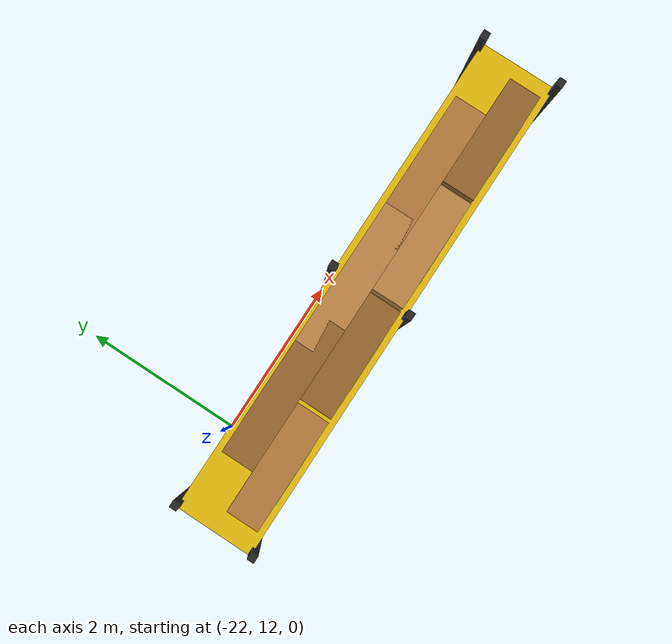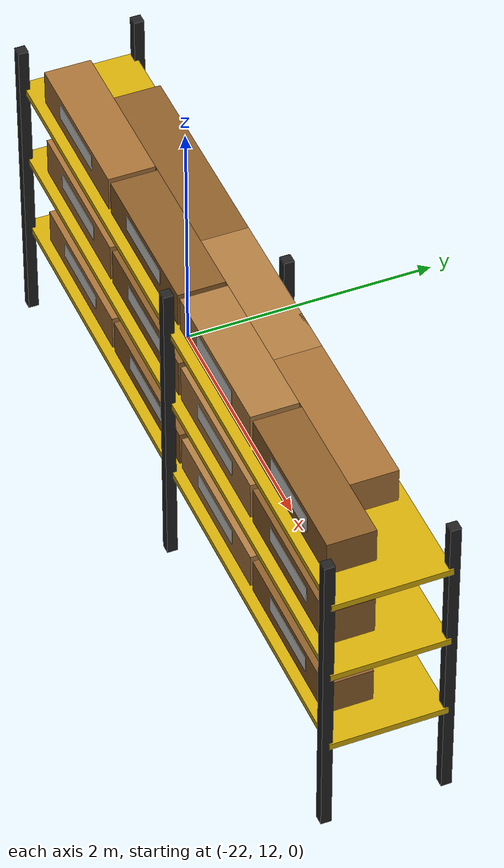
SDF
<sdf version="1.6">
 <world name="aws_industrial_warehouse">
  <model name="shelf_N1">
   <static>true</static>
   <pose>-20 11.5 0 0 0 0</pose>
   <link name="pFL">
    <pose>-2.8 -0.45 1.25 0 0 0</pose>
    <collision name="c">
     <geometry><box><size>0.08 0.08 2.5</size></box></geometry>
     <surface><friction><ode><mu>1.0</mu><mu2>1.0</mu2></ode></friction></surface>
    </collision>
    <visual name="v">
     <geometry><box><size>0.08 0.08 2.5</size></box></geometry>
     <material><ambient>0.10 0.10 0.10 1</ambient><diffuse>0.13 0.13 0.13 1</diffuse></material>
    </visual>
   </link>
   <link name="pBL">
    <pose>-2.8 0.45 1.25 0 0 0</pose>
    <collision name="c">
     <geometry><box><size>0.08 0.08 2.5</size></box></geometry>
     <surface><friction><ode><mu>1.0</mu><mu2>1.0</mu2></ode></friction></surface>
    </collision>
    <visual name="v">
     <geometry><box><size>0.08 0.08 2.5</size></box></geometry>
     <material><ambient>0.10 0.10 0.10 1</ambient><diffuse>0.13 0.13 0.13 1</diffuse></material>
    </visual>
   </link>
   <link name="pFC">
    <pose>0.0 -0.45 1.25 0 0 0</pose>
    <collision name="c">
     <geometry><box><size>0.08 0.08 2.5</size></box></geometry>
     <surface><friction><ode><mu>1.0</mu><mu2>1.0</mu2></ode></friction></surface>
    </collision>
    <visual name="v">
     <geometry><box><size>0.08 0.08 2.5</size></box></geometry>
     <material><ambient>0.10 0.10 0.10 1</ambient><diffuse>0.13 0.13 0.13 1</diffuse></material>
    </visual>
   </link>
   <link name="pBC">
    <pose>0.0 0.45 1.25 0 0 0</pose>
    <collision name="c">
     <geometry><box><size>0.08 0.08 2.5</size></box></geometry>
     <surface><friction><ode><mu>1.0</mu><mu2>1.0</mu2></ode></friction></surface>
    </collision>
    <visual name="v">
     <geometry><box><size>0.08 0.08 2.5</size></box></geometry>
     <material><ambient>0.10 0.10 0.10 1</ambient><diffuse>0.13 0.13 0.13 1</diffuse></material>
    </visual>
   </link>
   <link name="pFR">
    <pose>2.8 -0.45 1.25 0 0 0</pose>
    <collision name="c">
     <geometry><box><size>0.08 0.08 2.5</size></box></geometry>
     <surface><friction><ode><mu>1.0</mu><mu2>1.0</mu2></ode></friction></surface>
    </collision>
    <visual name="v">
     <geometry><box><size>0.08 0.08 2.5</size></box></geometry>
     <material><ambient>0.10 0.10 0.10 1</ambient><diffuse>0.13 0.13 0.13 1</diffuse></material>
    </visual>
   </link>
   <link name="pBR">
    <pose>2.8 0.45 1.25 0 0 0</pose>
    <collision name="c">
     <geometry><box><size>0.08 0.08 2.5</size></box></geometry>
     <surface><friction><ode><mu>1.0</mu><mu2>1.0</mu2></ode></friction></surface>
    </collision>
    <visual name="v">
     <geometry><box><size>0.08 0.08 2.5</size></box></geometry>
     <material><ambient>0.10 0.10 0.10 1</ambient><diffuse>0.13 0.13 0.13 1</diffuse></material>
    </visual>
   </link>
   <link name="deck1">
    <pose>0 0 0.77 0 0 0</pose>
    <collision name="c">
     <geometry><box><size>5.7 0.88 0.05</size></box></geometry>
     <surface><friction><ode><mu>1.0</mu><mu2>1.0</mu2></ode></friction></surface>
    </collision>
    <visual name="v">
     <geometry><box><size>5.7 0.88 0.05</size></box></geometry>
     <material><ambient>0.70 0.55 0.02 1</ambient><diffuse>0.82 0.67 0.03 1</diffuse></material>
    </visual>
   </link>
   <link name="deck2">
    <pose>0 0 1.45 0 0 0</pose>
    <collision name="c">
     <geometry><box><size>5.7 0.88 0.05</size></box></geometry>
     <surface><friction><ode><mu>1.0</mu><mu2>1.0</mu2></ode></friction></surface>
    </collision>
    <visual name="v">
     <geometry><box><size>5.7 0.88 0.05</size></box></geometry>
     <material><ambient>0.70 0.55 0.02 1</ambient><diffuse>0.82 0.67 0.03 1</diffuse></material>
    </visual>
   </link>
   <link name="deck3">
    <pose>0 0 2.12 0 0 0</pose>
    <collision name="c">
     <geometry><box><size>5.7 0.88 0.05</size></box></geometry>
     <surface><friction><ode><mu>1.0</mu><mu2>1.0</mu2></ode></friction></surface>
    </collision>
    <visual name="v">
     <geometry><box><size>5.7 0.88 0.05</size></box></geometry>
     <material><ambient>0.70 0.55 0.02 1</ambient><diffuse>0.82 0.67 0.03 1</diffuse></material>
    </visual>
   </link>
   <link name="bF1_1">
    <pose>-1.95 -0.18 0.94 0 0 0</pose>
    <visual name="v">
     <geometry><box><size>1.26 0.36 0.28</size></box></geometry>
     <material><ambient>0.58 0.38 0.18 1</ambient><diffuse>0.65 0.44 0.21 1</diffuse></material>
    </visual>
   </link>
   <link name="lF1_1">
    <pose>-1.95 -0.363 0.97 0 0 0</pose>
    <visual name="v">
     <geometry><box><size>0.62 0.005 0.13</size></box></geometry>
     <material><ambient>0.76 0.76 0.74 1</ambient><diffuse>0.83 0.83 0.81 1</diffuse></material>
    </visual>
   </link>
   <link name="bF1_2">
    <pose>-0.65 -0.18 0.94 0 0 0</pose>
    <visual name="v">
     <geometry><box><size>1.26 0.36 0.28</size></box></geometry>
     <material><ambient>0.48 0.30 0.12 1</ambient><diffuse>0.54 0.36 0.16 1</diffuse></material>
    </visual>
   </link>
   <link name="lF1_2">
    <pose>-0.65 -0.363 0.97 0 0 0</pose>
    <visual name="v">
     <geometry><box><size>0.62 0.005 0.13</size></box></geometry>
     <material><ambient>0.76 0.76 0.74 1</ambient><diffuse>0.83 0.83 0.81 1</diffuse></material>
    </visual>
   </link>
   <link name="bF1_3">
    <pose>0.65 -0.18 0.94 0 0 0</pose>
    <visual name="v">
     <geometry><box><size>1.26 0.36 0.28</size></box></geometry>
     <material><ambient>0.62 0.43 0.22 1</ambient><diffuse>0.68 0.48 0.25 1</diffuse></material>
    </visual>
   </link>
   <link name="lF1_3">
    <pose>0.65 -0.363 0.97 0 0 0</pose>
    <visual name="v">
     <geometry><box><size>0.62 0.005 0.13</size></box></geometry>
     <material><ambient>0.76 0.76 0.74 1</ambient><diffuse>0.83 0.83 0.81 1</diffuse></material>
    </visual>
   </link>
   <link name="bF1_4">
    <pose>1.95 -0.18 0.94 0 0 0</pose>
    <visual name="v">
     <geometry><box><size>1.26 0.36 0.28</size></box></geometry>
     <material><ambient>0.48 0.30 0.12 1</ambient><diffuse>0.54 0.36 0.16 1</diffuse></material>
    </visual>
   </link>
   <link name="lF1_4">
    <pose>1.95 -0.363 0.97 0 0 0</pose>
    <visual name="v">
     <geometry><box><size>0.62 0.005 0.13</size></box></geometry>
     <material><ambient>0.76 0.76 0.74 1</ambient><diffuse>0.83 0.83 0.81 1</diffuse></material>
    </visual>
   </link>
   <link name="bB1_1">
    <pose>-1.3 0.18 0.94 0 0 0</pose>
    <visual name="v">
     <geometry><box><size>1.65 0.36 0.3</size></box></geometry>
     <material><ambient>0.48 0.30 0.12 1</ambient><diffuse>0.54 0.36 0.16 1</diffuse></material>
    </visual>
   </link>
   <link name="bB1_2">
    <pose>0.0 0.18 0.94 0 0 0</pose>
    <visual name="v">
     <geometry><box><size>1.65 0.36 0.3</size></box></geometry>
     <material><ambient>0.62 0.43 0.22 1</ambient><diffuse>0.68 0.48 0.25 1</diffuse></material>
    </visual>
   </link>
   <link name="bB1_3">
    <pose>1.3 0.18 0.94 0 0 0</pose>
    <visual name="v">
     <geometry><box><size>1.65 0.36 0.3</size></box></geometry>
     <material><ambient>0.58 0.38 0.18 1</ambient><diffuse>0.65 0.44 0.21 1</diffuse></material>
    </visual>
   </link>
   <link name="bF2_1">
    <pose>-1.95 -0.18 1.62 0 0 0</pose>
    <visual name="v">
     <geometry><box><size>1.26 0.36 0.32</size></box></geometry>
     <material><ambient>0.58 0.38 0.18 1</ambient><diffuse>0.65 0.44 0.21 1</diffuse></material>
    </visual>
   </link>
   <link name="lF2_1">
    <pose>-1.95 -0.363 1.6500000000000001 0 0 0</pose>
    <visual name="v">
     <geometry><box><size>0.62 0.005 0.13</size></box></geometry>
     <material><ambient>0.76 0.76 0.74 1</ambient><diffuse>0.83 0.83 0.81 1</diffuse></material>
    </visual>
   </link>
   <link name="bF2_2">
    <pose>-0.65 -0.18 1.62 0 0 0</pose>
    <visual name="v">
     <geometry><box><size>1.26 0.36 0.32</size></box></geometry>
     <material><ambient>0.48 0.30 0.12 1</ambient><diffuse>0.54 0.36 0.16 1</diffuse></material>
    </visual>
   </link>
   <link name="lF2_2">
    <pose>-0.65 -0.363 1.6500000000000001 0 0 0</pose>
    <visual name="v">
     <geometry><box><size>0.62 0.005 0.13</size></box></geometry>
     <material><ambient>0.76 0.76 0.74 1</ambient><diffuse>0.83 0.83 0.81 1</diffuse></material>
    </visual>
   </link>
   <link name="bF2_3">
    <pose>0.65 -0.18 1.62 0 0 0</pose>
    <visual name="v">
     <geometry><box><size>1.26 0.36 0.32</size></box></geometry>
     <material><ambient>0.62 0.43 0.22 1</ambient><diffuse>0.68 0.48 0.25 1</diffuse></material>
    </visual>
   </link>
   <link name="lF2_3">
    <pose>0.65 -0.363 1.6500000000000001 0 0 0</pose>
    <visual name="v">
     <geometry><box><size>0.62 0.005 0.13</size></box></geometry>
     <material><ambient>0.76 0.76 0.74 1</ambient><diffuse>0.83 0.83 0.81 1</diffuse></material>
    </visual>
   </link>
   <link name="bF2_4">
    <pose>1.95 -0.18 1.62 0 0 0</pose>
    <visual name="v">
     <geometry><box><size>1.26 0.36 0.32</size></box></geometry>
     <material><ambient>0.48 0.30 0.12 1</ambient><diffuse>0.54 0.36 0.16 1</diffuse></material>
    </visual>
   </link>
   <link name="lF2_4">
    <pose>1.95 -0.363 1.6500000000000001 0 0 0</pose>
    <visual name="v">
     <geometry><box><size>0.62 0.005 0.13</size></box></geometry>
     <material><ambient>0.76 0.76 0.74 1</ambient><diffuse>0.83 0.83 0.81 1</diffuse></material>
    </visual>
   </link>
   <link name="bB2_1">
    <pose>-1.3 0.18 1.62 0 0 0</pose>
    <visual name="v">
     <geometry><box><size>1.65 0.36 0.28</size></box></geometry>
     <material><ambient>0.48 0.30 0.12 1</ambient><diffuse>0.54 0.36 0.16 1</diffuse></material>
    </visual>
   </link>
   <link name="bB2_2">
    <pose>0.0 0.18 1.62 0 0 0</pose>
    <visual name="v">
     <geometry><box><size>1.65 0.36 0.28</size></box></geometry>
     <material><ambient>0.62 0.43 0.22 1</ambient><diffuse>0.68 0.48 0.25 1</diffuse></material>
    </visual>
   </link>
   <link name="bB2_3">
    <pose>1.3 0.18 1.62 0 0 0</pose>
    <visual name="v">
     <geometry><box><size>1.65 0.36 0.28</size></box></geometry>
     <material><ambient>0.58 0.38 0.18 1</ambient><diffuse>0.65 0.44 0.21 1</diffuse></material>
    </visual>
   </link>
   <link name="bF3_1">
    <pose>-1.95 -0.18 2.29 0 0 0</pose>
    <visual name="v">
     <geometry><box><size>1.26 0.36 0.28</size></box></geometry>
     <material><ambient>0.58 0.38 0.18 1</ambient><diffuse>0.65 0.44 0.21 1</diffuse></material>
    </visual>
   </link>
   <link name="lF3_1">
    <pose>-1.95 -0.363 2.32 0 0 0</pose>
    <visual name="v">
     <geometry><box><size>0.62 0.005 0.13</size></box></geometry>
     <material><ambient>0.76 0.76 0.74 1</ambient><diffuse>0.83 0.83 0.81 1</diffuse></material>
    </visual>
   </link>
   <link name="bF3_2">
    <pose>-0.65 -0.18 2.29 0 0 0</pose>
    <visual name="v">
     <geometry><box><size>1.26 0.36 0.28</size></box></geometry>
     <material><ambient>0.48 0.30 0.12 1</ambient><diffuse>0.54 0.36 0.16 1</diffuse></material>
    </visual>
   </link>
   <link name="lF3_2">
    <pose>-0.65 -0.363 2.32 0 0 0</pose>
    <visual name="v">
     <geometry><box><size>0.62 0.005 0.13</size></box></geometry>
     <material><ambient>0.76 0.76 0.74 1</ambient><diffuse>0.83 0.83 0.81 1</diffuse></material>
    </visual>
   </link>
   <link name="bF3_3">
    <pose>0.65 -0.18 2.29 0 0 0</pose>
    <visual name="v">
     <geometry><box><size>1.26 0.36 0.28</size></box></geometry>
     <material><ambient>0.62 0.43 0.22 1</ambient><diffuse>0.68 0.48 0.25 1</diffuse></material>
    </visual>
   </link>
   <link name="lF3_3">
    <pose>0.65 -0.363 2.32 0 0 0</pose>
    <visual name="v">
     <geometry><box><size>0.62 0.005 0.13</size></box></geometry>
     <material><ambient>0.76 0.76 0.74 1</ambient><diffuse>0.83 0.83 0.81 1</diffuse></material>
    </visual>
   </link>
   <link name="bF3_4">
    <pose>1.95 -0.18 2.29 0 0 0</pose>
    <visual name="v">
     <geometry><box><size>1.26 0.36 0.28</size></box></geometry>
     <material><ambient>0.48 0.30 0.12 1</ambient><diffuse>0.54 0.36 0.16 1</diffuse></material>
    </visual>
   </link>
   <link name="lF3_4">
    <pose>1.95 -0.363 2.32 0 0 0</pose>
    <visual name="v">
     <geometry><box><size>0.62 0.005 0.13</size></box></geometry>
     <material><ambient>0.76 0.76 0.74 1</ambient><diffuse>0.83 0.83 0.81 1</diffuse></material>
    </visual>
   </link>
   <link name="bB3_1">
    <pose>-1.3 0.18 2.29 0 0 0</pose>
    <visual name="v">
     <geometry><box><size>1.65 0.36 0.28</size></box></geometry>
     <material><ambient>0.48 0.30 0.12 1</ambient><diffuse>0.54 0.36 0.16 1</diffuse></material>
    </visual>
   </link>
   <link name="bB3_2">
    <pose>0.0 0.18 2.29 0 0 0</pose>
    <visual name="v">
     <geometry><box><size>1.65 0.36 0.28</size></box></geometry>
     <material><ambient>0.62 0.43 0.22 1</ambient><diffuse>0.68 0.48 0.25 1</diffuse></material>
    </visual>
   </link>
   <link name="bB3_3">
    <pose>1.3 0.18 2.29 0 0 0</pose>
    <visual name="v">
     <geometry><box><size>1.65 0.36 0.28</size></box></geometry>
     <material><ambient>0.58 0.38 0.18 1</ambient><diffuse>0.65 0.44 0.21 1</diffuse></material>
    </visual>
   </link>
  </model>
 </world>
</sdf>
